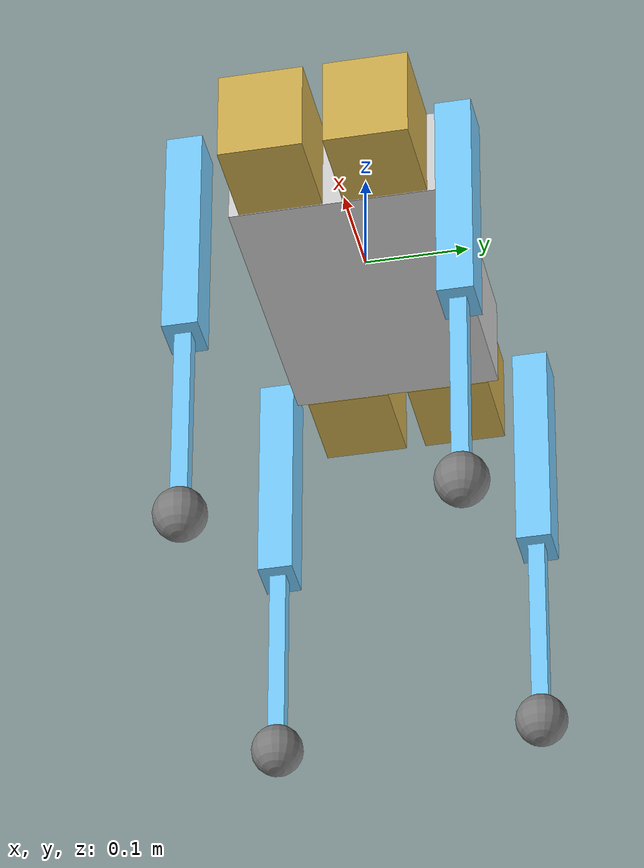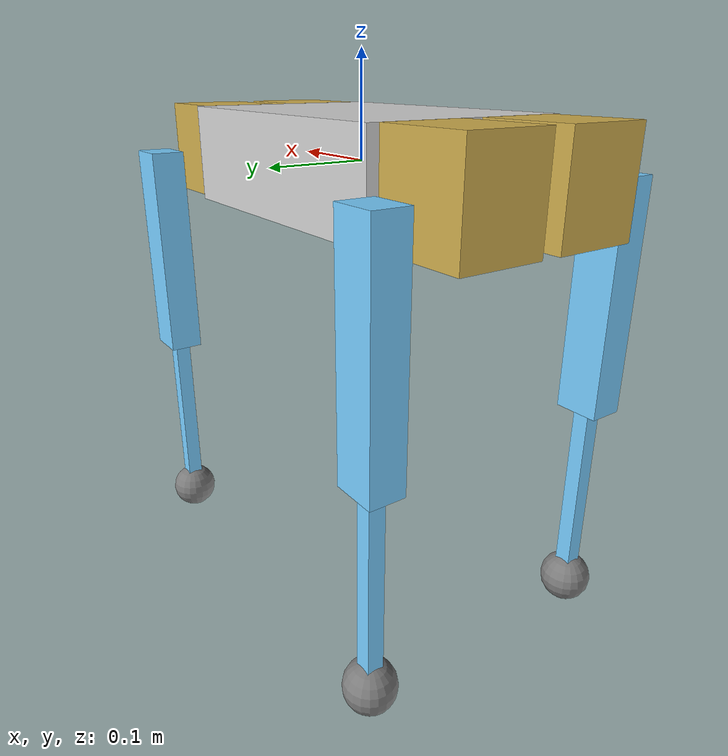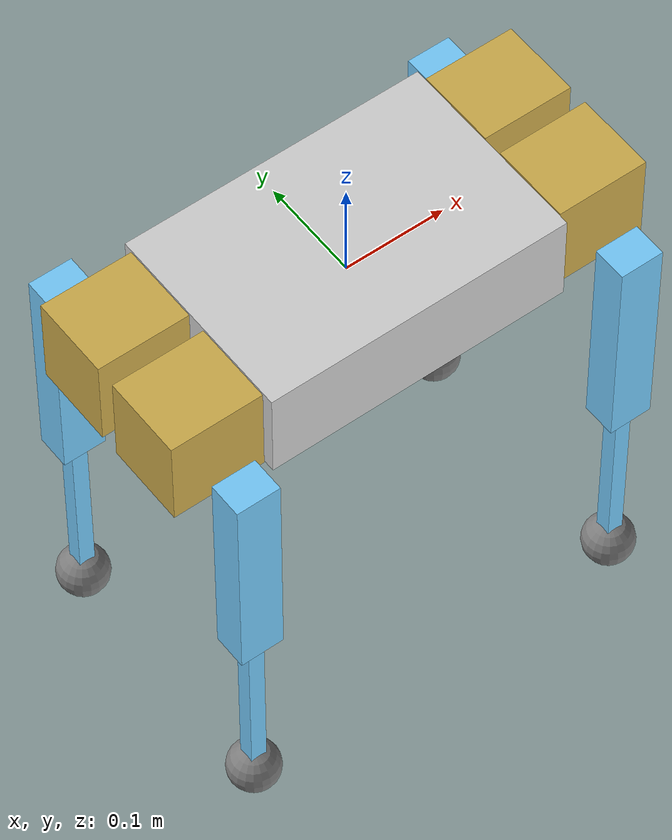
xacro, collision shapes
<?xml version="1.0" encoding="utf-8"?>

<robot name="mini_cheetah" xmlns:xacro="http://ros.org/wiki/xacro">
  <!-- joint limits -->
 <xacro:property name="damping" value="0"/>
    <xacro:property name="friction" value="0"/>
    <xacro:property name="hip_max" value="120"/>
    <xacro:property name="hip_min" value="-120"/>
    <xacro:property name="hip_velocity_max" value="52.4"/>
    <xacro:property name="hip_torque_max" value="20"/>
    <xacro:property name="thigh_max" value="270"/>
    <xacro:property name="thigh_min" value="-270"/>
    <xacro:property name="thigh_velocity_max" value="28.6"/>
    <xacro:property name="thigh_torque_max" value="55"/>
    <xacro:property name="calf_max" value="155"/>
    <xacro:property name="calf_min" value="-155"/>
    <xacro:property name="calf_velocity_max" value="28.6"/>
    <xacro:property name="calf_torque_max" value="55"/>

  <material name="black">
    <color rgba="0.0 0.0 0.0 1.0"/>
  </material>
  <material name="blue">
    <color rgba="0.0 0.0 0.8 1.0"/>
  </material>
  <material name="green">
    <color rgba="0.0 0.8 0.0 1.0"/>
  </material>
  <material name="grey">
    <color rgba="0.2 0.2 0.2 1.0"/>
  </material>
  <material name="silver">
    <color rgba="0.913725490196 0.913725490196 0.847058823529 1.0"/>
  </material>
  <material name="orange">
    <color rgba="1.0 0.423529411765 0.0392156862745 1.0"/>
  </material>
  <material name="brown">
    <color rgba="0.870588235294 0.811764705882 0.764705882353 1.0"/>
  </material>
  <material name="white_gray">
    <color rgba="0.823529411765 0.823529411765 0.823529411765 1.0"/>
  </material>
  <material name="gold">
    <color rgba="0.811764705882 0.678431372549 0.301960784314 1.0"/>
  </material>
  <material name="white_blue">
    <color rgba="0.462745098039 0.8 0.992156862745 1.0"/>
  </material>
  <material name="white_black">
    <color rgba="0.494117647059 0.494117647059 0.494117647059 1.0"/>
  </material>
  <material name="red">
    <color rgba="0.8 0.0 0.0 1.0"/>
  </material>
  <material name="white">
    <color rgba="1.0 1.0 1.0 1.0"/>
  </material>

  <gazebo reference="base">
    <material>Gazebo/Green</material>
    <turnGravityOff>false</turnGravityOff>
  </gazebo>
  <gazebo reference="trunk">
    <mu1>0.9</mu1>
    <mu2>0.9</mu2>
    <kp value="1000000.0"/>
    <kd value="1.0"/>
  </gazebo>
  <gazebo reference="stick_link">
    <mu1>0.9</mu1>
    <mu2>0.9</mu2>
    <material>Gazebo/White</material>
  </gazebo>
  <gazebo reference="imu_link">
    <mu1>0.9</mu1>
    <mu2>0.9</mu2>
    <material>Gazebo/Red</material>
  </gazebo>
  <!-- FL leg -->
  <gazebo reference="FL_hip">
    <mu1>0.9</mu1>
    <mu2>0.9</mu2>
  </gazebo>
  <gazebo reference="FL_thigh">
    <mu1>0.9</mu1>
    <mu2>0.9</mu2>
    <self_collide>1</self_collide>
    <material>Gazebo/White</material>
    <kp value="1000000.0"/>
    <kd value="1.0"/>
  </gazebo>
  <gazebo reference="FL_calf">
    <mu1>0.9</mu1>
    <mu2>0.9</mu2>
    <self_collide>1</self_collide>
  </gazebo>
  <gazebo reference="FL_foot">
    <mu1>0.9</mu1>
    <mu2>0.9</mu2>
    <self_collide>1</self_collide>
    <material>Gazebo/DarkGrey</material>
    <kp value="1000000.0"/>
    <kd value="1.0"/>
  </gazebo>
  <!-- FR leg -->
  <gazebo reference="FR_hip">
    <mu1>0.9</mu1>
    <mu2>0.9</mu2>
  </gazebo>
  <gazebo reference="FR_thigh">
    <mu1>0.9</mu1>
    <mu2>0.9</mu2>
    <self_collide>1</self_collide>
    <material>Gazebo/White</material>
    <kp value="1000000.0"/>
    <kd value="1.0"/>
  </gazebo>
  <gazebo reference="FR_calf">
    <mu1>0.9</mu1>
    <mu2>0.9</mu2>
    <self_collide>1</self_collide>
  </gazebo>
  <gazebo reference="FR_foot">
    <mu1>0.9</mu1>
    <mu2>0.9</mu2>
    <self_collide>1</self_collide>
    <material>Gazebo/DarkGrey</material>
    <kp value="1000000.0"/>
    <kd value="1.0"/>
  </gazebo>
  <!-- RL leg -->
  <gazebo reference="RL_hip">
    <mu1>0.9</mu1>
    <mu2>0.9</mu2>
  </gazebo>
  <gazebo reference="RL_thigh">
    <mu1>0.9</mu1>
    <mu2>0.9</mu2>
    <self_collide>1</self_collide>
    <material>Gazebo/White</material>
    <kp value="1000000.0"/>
    <kd value="1.0"/>
  </gazebo>
  <gazebo reference="RL_calf">
    <mu1>0.9</mu1>
    <mu2>0.9</mu2>
    <self_collide>1</self_collide>
  </gazebo>
  <gazebo reference="RL_foot">
    <mu1>0.9</mu1>
    <mu2>0.9</mu2>
    <self_collide>1</self_collide>
    <material>Gazebo/DarkGrey</material>
    <kp value="1000000.0"/>
    <kd value="1.0"/>
  </gazebo>
  <!-- RR leg -->
  <gazebo reference="RR_hip">
    <mu1>0.9</mu1>
    <mu2>0.9</mu2>
  </gazebo>
  <gazebo reference="RR_thigh">
    <mu1>0.9</mu1>
    <mu2>0.9</mu2>
    <self_collide>1</self_collide>
    <material>Gazebo/White</material>
    <kp value="1000000.0"/>
    <kd value="1.0"/>
  </gazebo>
  <gazebo reference="RR_calf">
    <mu1>0.9</mu1>
    <mu2>0.9</mu2>
    <self_collide>1</self_collide>
  </gazebo>
  <gazebo reference="RR_foot">
    <mu1>0.9</mu1>
    <mu2>0.9</mu2>
    <self_collide>1</self_collide>
    <material>Gazebo/DarkGrey</material>
    <kp value="1000000.0"/>
    <kd value="1.0"/>
  </gazebo>

  <link name="trunk"/>
  <link name="trunk_interia">
    <visual>
      <origin rpy="0 0 0" xyz="0 0 0"/>
      <geometry>
        <mesh filename="package://cheetah_description/meshes/trunk.STL" scale="1 1 1"/>
      </geometry>
      <material name="white_gray"/>
    </visual>
    <collision>
      <origin rpy="0 0 0" xyz="0 0 0"/>
      <geometry>
        <box size="0.3 0.2 0.093"/>
      </geometry>
    </collision>
    <inertial>
      <origin rpy="0 0 0" xyz="0.0 0.0 0.0"/>
      <mass value="3.3"/>
      <inertia ixx="0.011253" ixy="0" ixz="0.0" iyy="0.036203" iyz="-0.0" izz="0.042673"/>
    </inertial>
  </link>
  <joint name="trunk_to_trunk_inertia" type="fixed">
    <origin rpy="0 0 0" xyz="0 0 0"/>
    <parent link="trunk"/>
    <child link="trunk_interia"/>
  </joint>

  <!-- //////////////////////hip//////////////////// -->
  <joint name="RL_hip_joint" type="revolute">
    <origin rpy="0 0 0" xyz="-0.196 0.049664 0"/>
    <parent link="trunk"/>
    <child link="RL_hip"/>
    <axis xyz="1 0 0"/>
    <dynamics damping="0" friction="0"/>
    <limit effort="20" lower="-0.872664625997" upper="1.0471975512" velocity="10.6"/>
  </joint>
  <link name="RL_hip">
    <visual>
      <origin rpy="3.14159265359 0 0" xyz="0 0 0"/>
      <geometry>
        <mesh filename="package://cheetah_description/meshes/hip.STL" scale="1 1 1"/>
      </geometry>
      <material name="gold"/>
    </visual>
    <collision>

      <geometry>
        <box size="0.09 0.08 0.093"/>
      </geometry>
    </collision>
    <inertial>
      <origin rpy="0 0 0" xyz="0.0 -0.036 0.0"/>
      <mass value="0.57"/>
      <inertia ixx="0.0007148275" ixy="0.0" ixz="0.0" iyy="0.0007955775" iyz="0.0" izz="0.00068875"/>
    </inertial>
  </link>
  <!-- //////////////////////thigh//////////////////// -->
  <joint name="RL_thigh_joint" type="revolute">
    <origin rpy="0 0 0" xyz="0 0.077476 0"/>
    <parent link="RL_hip"/>
    <child link="RL_thigh"/>
    <axis xyz="0 1 0"/>
    <dynamics damping="0" friction="0"/>
    <limit effort="20" lower="-0.523598775598" upper="3.92699081699" velocity="10.6"/>
  </joint>
  <link name="RL_thigh">
    <visual>
      <origin rpy="3.14159265359 3.14159265359 0" xyz="0 0 0"/>
      <geometry>
        <mesh filename="package://cheetah_description/meshes/thigh.STL" scale="1 1 1"/>
      </geometry>
      <material name="white_blue"/>
    </visual>
    <collision>
      <origin rpy="0 0 0" xyz="0 0 -0.11"/>
      <geometry>
        <box size="0.043 0.034 0.22"/>
      </geometry>
      <material name="white_blue"/>
    </collision>
    <inertial>
      <origin rpy="0 0 0" xyz="0.0 -0.016 -0.11"/>
      <mass value="0.634"/>
      <inertia ixx="0.00261820866667" ixy="0.0" ixz="0.0" iyy="0.00265482216667" iyz="0.0" izz="0.000158764166667"/>
    </inertial>
  </link>
  <!-- //////////////////////calf//////////////////// -->
  <joint name="RL_calf_joint" type="revolute">
    <origin rpy="0 0 0" xyz="0 0 -0.2115"/>
    <parent link="RL_thigh"/>
    <child link="RL_calf"/>
    <axis xyz="0 1 0"/>
    <dynamics damping="0" friction="0"/>
    <limit effort="20" lower="-3.14159265359" upper="3.14159265359" velocity="10.6"/>
  </joint>
  <link name="RL_calf">
    <visual>
      <origin rpy="0 0 0" xyz="0.0 0.009 0.0"/>
      <geometry>
        <mesh filename="package://cheetah_description/meshes/calf.STL" scale="1 1 1"/>
      </geometry>
      <material name="white_blue"/>
    </visual>
    <collision>
      <origin rpy="0 0 0" xyz="0.0 0.0 -0.1"/>
      <geometry>
        <box size="0.016 0.016 0.2"/>
      </geometry>
    </collision>
    <inertial>
      <origin rpy="0 0 0" xyz="0.0 0.0 0.0"/>
      <mass value="0.064"/>
      <inertia ixx="0.000214698666667" ixy="0.0" ixz="0.0" iyy="0.000214698666667" iyz="0.0" izz="2.73066666667e-06"/>
    </inertial>
  </link>
  <!-- //////////////////////foot//////////////////// -->
  <joint name="RL_foot_fixed" type="fixed">
    <origin rpy="0 0 0" xyz="0 0 -0.23039"/>
    <parent link="RL_calf"/>
    <child link="RL_foot"/>
  </joint>
  <link name="RL_foot">
    <visual>
      <origin rpy="0 0 0" xyz="0 0.018 0.02"/>
      <geometry>
        <mesh filename="package://cheetah_description/meshes/foot.STL" scale="1 1 1"/>
      </geometry>
      <material name="white_black"/>
    </visual>
    <collision>
      <origin rpy="0 0 0" xyz="0 0.0 0.025"/>
      <geometry>
        <sphere radius="0.025"/>
      </geometry>
    </collision>
    <inertial>
      <origin rpy="0 0 0" xyz="0.0 0.0 0"/>
      <mass value="0.15"/>
      <inertia ixx="4.2135e-05" ixy="0.0" ixz="0.0" iyy="4.2135e-05" iyz="0.0" izz="4.2135e-05"/>
    </inertial>
  </link>

  <!-- //////////////////////hip//////////////////// -->
  <joint name="FL_hip_joint" type="revolute">
    <origin rpy="0 0 0" xyz="0.196 0.049664 0"/>
    <parent link="trunk"/>
    <child link="FL_hip"/>
    <axis xyz="1 0 0"/>
    <dynamics damping="0" friction="0"/>
    <limit effort="20" lower="-0.872664625997" upper="1.0471975512" velocity="10.6"/>
  </joint>
  <link name="FL_hip">
    <visual>
      <origin rpy="3.14159265359 3.14159265359 0" xyz="0 0 0"/>
      <geometry>
        <mesh filename="package://cheetah_description/meshes/hip.STL" scale="1 1 1"/>
      </geometry>
      <material name="gold"/>
    </visual>
    <collision>

      <geometry>
        <box size="0.09 0.08 0.093"/>
      </geometry>
    </collision>
    <inertial>
      <origin rpy="0 0 0" xyz="-0.0 -0.036 0.0"/>
      <mass value="0.57"/>
      <inertia ixx="0.0007148275" ixy="0.0" ixz="0.0" iyy="0.0007955775" iyz="0.0" izz="0.00068875"/>
    </inertial>
  </link>
  <!-- //////////////////////thigh//////////////////// -->
  <joint name="FL_thigh_joint" type="revolute">
    <origin rpy="0 0 0" xyz="0 0.077476 0"/>
    <parent link="FL_hip"/>
    <child link="FL_thigh"/>
    <axis xyz="0 1 0"/>
    <dynamics damping="0" friction="0"/>
    <limit effort="20" lower="-0.523598775598" upper="3.92699081699" velocity="10.6"/>
  </joint>
  <link name="FL_thigh">
    <visual>
      <origin rpy="3.14159265359 3.14159265359 0" xyz="0 0 0"/>
      <geometry>
        <mesh filename="package://cheetah_description/meshes/thigh.STL" scale="1 1 1"/>
      </geometry>
      <material name="white_blue"/>
    </visual>
    <collision>
      <origin rpy="0 0 0" xyz="0 0 -0.11"/>
      <geometry>
        <box size="0.043 0.034 0.22"/>
      </geometry>
      <material name="white_blue"/>
    </collision>
    <inertial>
      <origin rpy="0 0 0" xyz="0.0 -0.016 -0.11"/>
      <mass value="0.634"/>
      <inertia ixx="0.00261820866667" ixy="0.0" ixz="0.0" iyy="0.00265482216667" iyz="0.0" izz="0.000158764166667"/>
    </inertial>
  </link>
  <!-- //////////////////////calf//////////////////// -->
  <joint name="FL_calf_joint" type="revolute">
    <origin rpy="0 0 0" xyz="0 0 -0.2115"/>
    <parent link="FL_thigh"/>
    <child link="FL_calf"/>
    <axis xyz="0 1 0"/>
    <dynamics damping="0" friction="0"/>
    <limit effort="20" lower="-3.14159265359" upper="3.14159265359" velocity="10.6"/>
  </joint>
  <link name="FL_calf">
    <visual>
      <origin rpy="0 0 0" xyz="0.0 0.009 0.0"/>
      <geometry>
        <mesh filename="package://cheetah_description/meshes/calf.STL" scale="1 1 1"/>
      </geometry>
      <material name="white_blue"/>
    </visual>
    <collision>
      <origin rpy="0 0 0" xyz="0.0 0.0 -0.1"/>
      <geometry>
        <box size="0.016 0.016 0.2"/>
      </geometry>
    </collision>
    <inertial>
      <origin rpy="0 0 0" xyz="0.0 0.0 0.0"/>
      <mass value="0.064"/>
      <inertia ixx="0.000214698666667" ixy="0.0" ixz="0.0" iyy="0.000214698666667" iyz="0.0" izz="2.73066666667e-06"/>
    </inertial>
  </link>
  <!-- //////////////////////foot//////////////////// -->
  <joint name="FL_foot_fixed" type="fixed">
    <origin rpy="0 0 0" xyz="0 0 -0.23039"/>
    <parent link="FL_calf"/>
    <child link="FL_foot"/>
  </joint>
  <link name="FL_foot">
    <visual>
      <origin rpy="0 0 0" xyz="0 0.018 0.02"/>
      <geometry>
        <mesh filename="package://cheetah_description/meshes/foot.STL" scale="1 1 1"/>
      </geometry>
      <material name="white_black"/>
    </visual>
    <collision>
      <origin rpy="0 0 0" xyz="0 0.0 0.025"/>
      <geometry>
        <sphere radius="0.025"/>
      </geometry>
    </collision>
    <inertial>
      <origin rpy="0 0 0" xyz="0.0 0.0 0"/>
      <mass value="0.15"/>
      <inertia ixx="4.2135e-05" ixy="0.0" ixz="0.0" iyy="4.2135e-05" iyz="0.0" izz="4.2135e-05"/>
    </inertial>
  </link>

  <!-- //////////////////////hip//////////////////// -->
  <joint name="RR_hip_joint" type="revolute">
    <origin rpy="0 0 0" xyz="-0.196 -0.049664 0"/>
    <parent link="trunk"/>
    <child link="RR_hip"/>
    <axis xyz="1 0 0"/>
    <dynamics damping="0" friction="0"/>
    <limit effort="20" lower="-1.0471975512" upper="0.872664625997" velocity="10.6"/>
  </joint>
  <link name="RR_hip">
    <visual>
      <origin rpy="0 0 0" xyz="0 0 0"/>
      <geometry>
        <mesh filename="package://cheetah_description/meshes/hip.STL" scale="1 1 1"/>
      </geometry>
      <material name="gold"/>
    </visual>
    <collision>

      <geometry>
        <box size="0.09 0.08 0.093"/>
      </geometry>
    </collision>
    <inertial>
      <origin rpy="0 0 0" xyz="0.0 0.036 0.0"/>
      <mass value="0.57"/>
      <inertia ixx="0.0007148275" ixy="0.0" ixz="0.0" iyy="0.0007955775" iyz="0.0" izz="0.00068875"/>
    </inertial>
  </link>
  <!-- //////////////////////thigh//////////////////// -->
  <joint name="RR_thigh_joint" type="revolute">
    <origin rpy="0 0 0" xyz="0 -0.077476 0"/>
    <parent link="RR_hip"/>
    <child link="RR_thigh"/>
    <axis xyz="0 1 0"/>
    <dynamics damping="0" friction="0"/>
    <limit effort="20" lower="-0.523598775598" upper="3.92699081699" velocity="10.6"/>
  </joint>
  <link name="RR_thigh">
    <visual>
      <origin rpy="0 0 0" xyz="0 0 0"/>
      <geometry>
        <mesh filename="package://cheetah_description/meshes/thigh.STL" scale="1 1 1"/>
      </geometry>
      <material name="white_blue"/>
    </visual>
    <collision>
      <origin rpy="0 0 0" xyz="0 0 -0.11"/>
      <geometry>
        <box size="0.043 0.034 0.22"/>
      </geometry>
      <material name="white_blue"/>
    </collision>
    <inertial>
      <origin rpy="0 0 0" xyz="0.0 0.016 -0.11"/>
      <mass value="0.634"/>
      <inertia ixx="0.00261820866667" ixy="0.0" ixz="0.0" iyy="0.00265482216667" iyz="0.0" izz="0.000158764166667"/>
    </inertial>
  </link>
  <!-- //////////////////////calf//////////////////// -->
  <joint name="RR_calf_joint" type="revolute">
    <origin rpy="0 0 0" xyz="0 0 -0.2115"/>
    <parent link="RR_thigh"/>
    <child link="RR_calf"/>
    <axis xyz="0 1 0"/>
    <dynamics damping="0" friction="0"/>
    <limit effort="20" lower="-3.14159265359" upper="3.14159265359" velocity="10.6"/>
  </joint>
  <link name="RR_calf">
    <visual>
      <origin rpy="0 0 0" xyz="0.0 0.009 0.0"/>
      <geometry>
        <mesh filename="package://cheetah_description/meshes/calf.STL" scale="1 1 1"/>
      </geometry>
      <material name="white_blue"/>
    </visual>
    <collision>
      <origin rpy="0 0 0" xyz="0.0 0.0 -0.1"/>
      <geometry>
        <box size="0.016 0.016 0.2"/>
      </geometry>
    </collision>
    <inertial>
      <origin rpy="0 0 0" xyz="0.0 0.0 0.0"/>
      <mass value="0.064"/>
      <inertia ixx="0.000214698666667" ixy="0.0" ixz="0.0" iyy="0.000214698666667" iyz="0.0" izz="2.73066666667e-06"/>
    </inertial>
  </link>
  <!-- //////////////////////foot//////////////////// -->
  <joint name="RR_foot_fixed" type="fixed">
    <origin rpy="0 0 0" xyz="0 0 -0.23039"/>
    <parent link="RR_calf"/>
    <child link="RR_foot"/>
  </joint>
  <link name="RR_foot">
    <visual>
      <origin rpy="0 0 0" xyz="0 0.018 0.02"/>
      <geometry>
        <mesh filename="package://cheetah_description/meshes/foot.STL" scale="1 1 1"/>
      </geometry>
      <material name="white_black"/>
    </visual>
    <collision>
      <origin rpy="0 0 0" xyz="0 0.0 0.025"/>
      <geometry>
        <sphere radius="0.025"/>
      </geometry>
    </collision>
    <inertial>
      <origin rpy="0 0 0" xyz="0.0 0.0 0"/>
      <mass value="0.15"/>
      <inertia ixx="4.2135e-05" ixy="0.0" ixz="0.0" iyy="4.2135e-05" iyz="0.0" izz="4.2135e-05"/>
    </inertial>
  </link>

  <!-- //////////////////////hip//////////////////// -->
  <joint name="FR_hip_joint" type="revolute">
    <origin rpy="0 0 0" xyz="0.196 -0.049664 0"/>
    <parent link="trunk"/>
    <child link="FR_hip"/>
    <axis xyz="1 0 0"/>
    <dynamics damping="0" friction="0"/>
    <limit effort="20" lower="-1.0471975512" upper="0.872664625997" velocity="10.6"/>
  </joint>
  <link name="FR_hip">
    <visual>
      <origin rpy="0 3.14159265359 0" xyz="0 0 0"/>
      <geometry>
        <mesh filename="package://cheetah_description/meshes/hip.STL" scale="1 1 1"/>
      </geometry>
      <material name="gold"/>
    </visual>
    <collision>

      <geometry>
        <box size="0.09 0.08 0.093"/>
      </geometry>
    </collision>
    <inertial>
      <origin rpy="0 0 0" xyz="-0.0 0.036 0.0"/>
      <mass value="0.57"/>
      <inertia ixx="0.0007148275" ixy="0.0" ixz="0.0" iyy="0.0007955775" iyz="0.0" izz="0.00068875"/>
    </inertial>
  </link>
  <!-- //////////////////////thigh//////////////////// -->
  <joint name="FR_thigh_joint" type="revolute">
    <origin rpy="0 0 0" xyz="0 -0.077476 0"/>
    <parent link="FR_hip"/>
    <child link="FR_thigh"/>
    <axis xyz="0 1 0"/>
    <dynamics damping="0" friction="0"/>
    <limit effort="20" lower="-0.523598775598" upper="3.92699081699" velocity="10.6"/>
  </joint>
  <link name="FR_thigh">
    <visual>
      <origin rpy="0 0 0" xyz="0 0 0"/>
      <geometry>
        <mesh filename="package://cheetah_description/meshes/thigh.STL" scale="1 1 1"/>
      </geometry>
      <material name="white_blue"/>
    </visual>
    <collision>

      <origin rpy="0 0 0" xyz="0 0 -0.11"/>
      <geometry>
        <box size="0.043 0.034 0.22"/>
      </geometry>
      <material name="white_blue"/>
    </collision>
    <inertial>
      <origin rpy="0 0 0" xyz="0.0 0.016 -0.11"/>
      <mass value="0.634"/>
      <inertia ixx="0.00261820866667" ixy="0.0" ixz="0.0" iyy="0.00265482216667" iyz="0.0" izz="0.000158764166667"/>
    </inertial>
  </link>
  <!-- //////////////////////calf//////////////////// -->
  <joint name="FR_calf_joint" type="revolute">
    <origin rpy="0 0 0" xyz="0 0 -0.2115"/>
    <parent link="FR_thigh"/>
    <child link="FR_calf"/>
    <axis xyz="0 1 0"/>
    <dynamics damping="0" friction="0"/>
    <limit effort="20" lower="-3.14159265359" upper="3.14159265359" velocity="10.6"/>
  </joint>
  <link name="FR_calf">
    <visual>
      <origin rpy="0 0 0" xyz="0.0 0.009 0.0"/>
      <geometry>
        <mesh filename="package://cheetah_description/meshes/calf.STL" scale="1 1 1"/>
      </geometry>
      <material name="white_blue"/>
    </visual>
    <collision>
      <origin rpy="0 0 0" xyz="0.0 0.0 -0.1"/>
      <geometry>
        <box size="0.016 0.016 0.2"/>
      </geometry>
    </collision>
    <inertial>
      <origin rpy="0 0 0" xyz="0.0 0.0 0.0"/>
      <mass value="0.064"/>
      <inertia ixx="0.000214698666667" ixy="0.0" ixz="0.0" iyy="0.000214698666667" iyz="0.0" izz="2.73066666667e-06"/>
    </inertial>
  </link>
  <!-- //////////////////////foot//////////////////// -->
  <joint name="FR_foot_fixed" type="fixed">
    <origin rpy="0 0 0" xyz="0 0 -0.23039"/>
    <parent link="FR_calf"/>
    <child link="FR_foot"/>
  </joint>
  <link name="FR_foot">
    <visual>
      <origin rpy="0 0 0" xyz="0 0.018 0.02"/>
      <geometry>
        <mesh filename="package://cheetah_description/meshes/foot.STL" scale="1 1 1"/>
      </geometry>
      <material name="white_black"/>
    </visual>
    <collision>
      <origin rpy="0 0 0" xyz="0 0.0 0.025"/>
      <geometry>
        <sphere radius="0.025"/>
      </geometry>
    </collision>
    <inertial>
      <origin rpy="0 0 0" xyz="0.0 0.0 0"/>
      <mass value="0.15"/>
      <inertia ixx="4.2135e-05" ixy="0.0" ixz="0.0" iyy="4.2135e-05" iyz="0.0" izz="4.2135e-05"/>
    </inertial>
  </link>

</robot>
